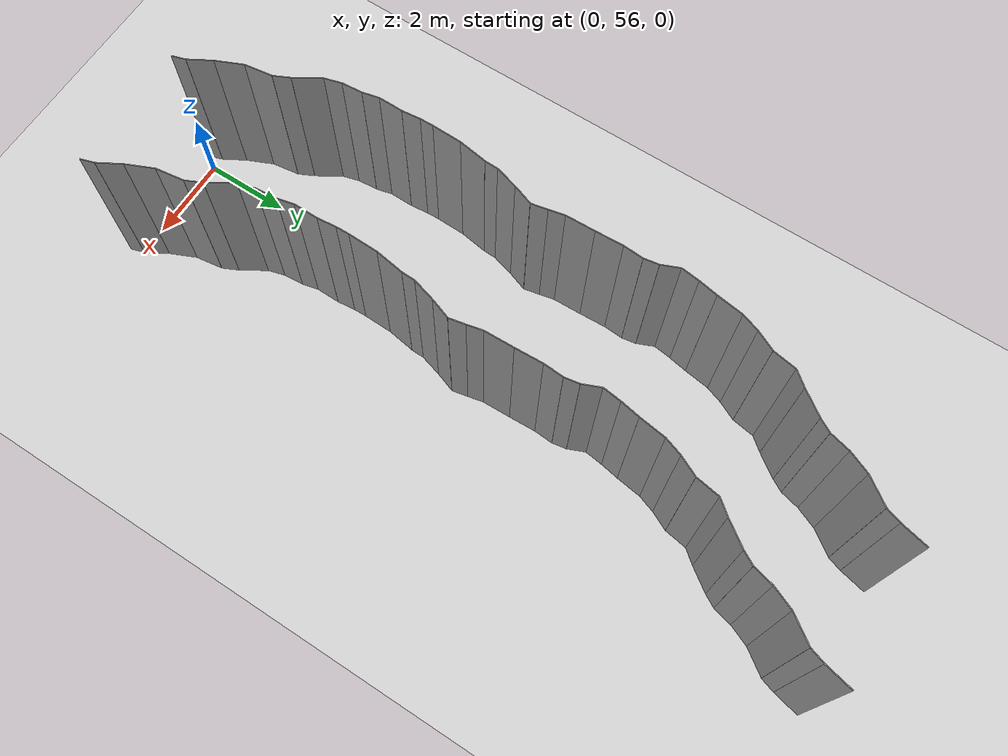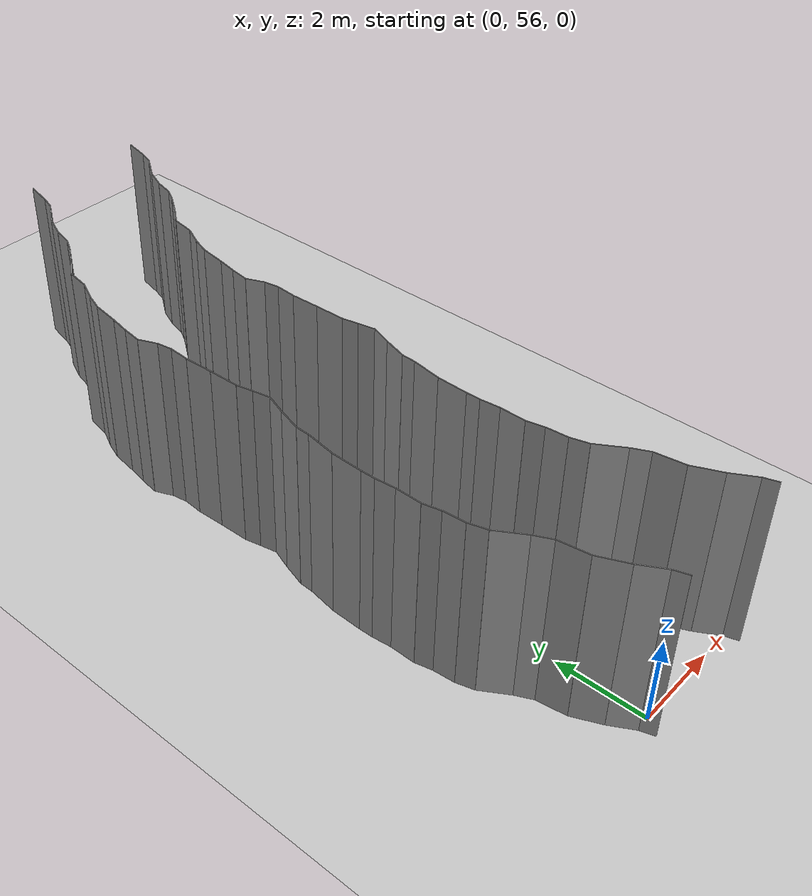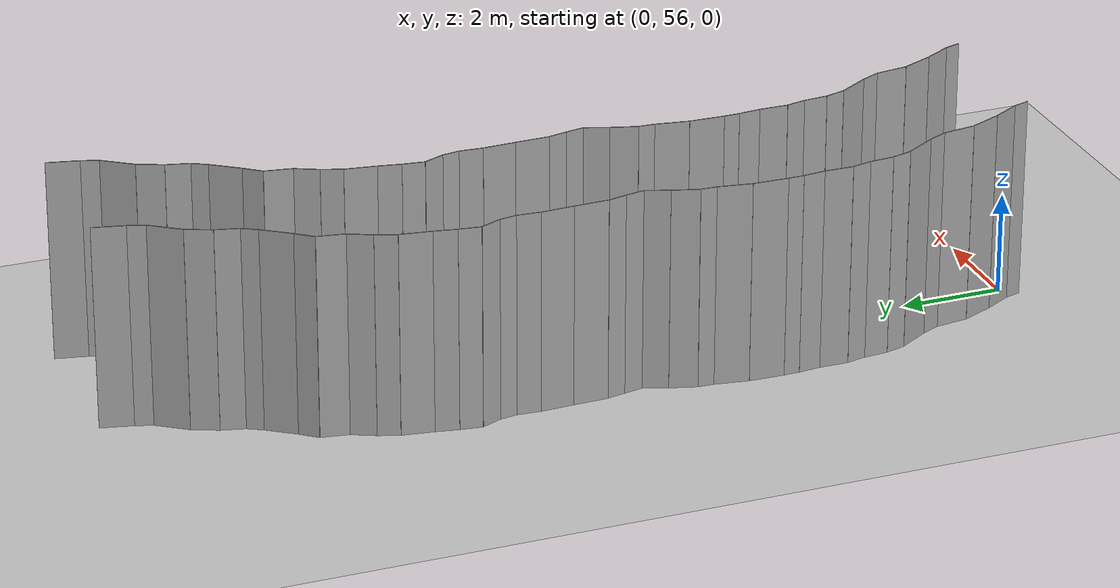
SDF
<sdf version="1.6">
 <world name="default">
  <model name="ground_plane">
   <static>1</static>
   <link name="link">
    <collision name="collision">
     <geometry><plane><normal>0 0 1</normal><size>200 200</size></plane></geometry>
     <surface><friction><ode><mu>100</mu><mu2>50</mu2></ode></friction></surface>
    </collision>
    <visual name="visual">
     <cast_shadows>0</cast_shadows>
     <geometry><plane><normal>0 0 1</normal><size>200 200</size></plane></geometry>
     <material>
      <script><uri>file://media/materials/scripts/gazebo.material</uri><name>Gazebo/Grey</name></script>
     </material>
    </visual>
   </link>
   <pose>0 100 0 0 -0 0</pose>
  </model>
  <model name="wall_224">
   <static>1</static>
   <pose>-0.27791568117037885 55.83840874769559 2 0 0 0.3133656839957118</pose>
   <link name="link">
    <collision name="collision"><geometry><box><size>0.02 0.324950442106 4</size></box></geometry></collision>
    <visual name="visual">
     <material>
      <script><name>Gazebo/Grey</name><uri>file://media/materials/scripts/gazebo.material</uri></script>
     </material>
     <geometry><box><size>0.02 0.324950442106 4</size></box></geometry>
    </visual>
   </link>
  </model>
  <model name="wall_225">
   <static>1</static>
   <pose>2.722084318829621 55.83840874769559 2 0 0 0.3133656839957118</pose>
   <link name="link">
    <collision name="collision"><geometry><box><size>0.02 0.324950442106 4</size></box></geometry></collision>
    <visual name="visual">
     <material>
      <script><name>Gazebo/Grey</name><uri>file://media/materials/scripts/gazebo.material</uri></script>
     </material>
     <geometry><box><size>0.02 0.324950442106 4</size></box></geometry>
    </visual>
   </link>
  </model>
  <model name="wall_226">
   <static>1</static>
   <pose>-0.47660424796695955 56.24952846498485 2 0 0 0.5250021931057013</pose>
   <link name="link">
    <collision name="collision"><geometry><box><size>0.02 0.592973609013 4</size></box></geometry></collision>
    <visual name="visual">
     <material>
      <script><name>Gazebo/Grey</name><uri>file://media/materials/scripts/gazebo.material</uri></script>
     </material>
     <geometry><box><size>0.02 0.592973609013 4</size></box></geometry>
    </visual>
   </link>
  </model>
  <model name="wall_227">
   <static>1</static>
   <pose>2.5233957520330406 56.24952846498485 2 0 0 0.5250021931057013</pose>
   <link name="link">
    <collision name="collision"><geometry><box><size>0.02 0.592973609013 4</size></box></geometry></collision>
    <visual name="visual">
     <material>
      <script><name>Gazebo/Grey</name><uri>file://media/materials/scripts/gazebo.material</uri></script>
     </material>
     <geometry><box><size>0.02 0.592973609013 4</size></box></geometry>
    </visual>
   </link>
  </model>
  <model name="wall_228">
   <static>1</static>
   <pose>-0.7618178983115443 56.8112299590555 2 0 0 0.42093077562016074</pose>
   <link name="link">
    <collision name="collision"><geometry><box><size>0.02 0.668657120424 4</size></box></geometry></collision>
    <visual name="visual">
     <material>
      <script><name>Gazebo/Grey</name><uri>file://media/materials/scripts/gazebo.material</uri></script>
     </material>
     <geometry><box><size>0.02 0.668657120424 4</size></box></geometry>
    </visual>
   </link>
  </model>
  <model name="wall_229">
   <static>1</static>
   <pose>2.2381821016884555 56.8112299590555 2 0 0 0.42093077562016074</pose>
   <link name="link">
    <collision name="collision"><geometry><box><size>0.02 0.668657120424 4</size></box></geometry></collision>
    <visual name="visual">
     <material>
      <script><name>Gazebo/Grey</name><uri>file://media/materials/scripts/gazebo.material</uri></script>
     </material>
     <geometry><box><size>0.02 0.668657120424 4</size></box></geometry>
    </visual>
   </link>
  </model>
  <model name="wall_230">
   <static>1</static>
   <pose>-0.9451990305487259 57.44122407455503 2 0 0 0.14299506863835965</pose>
   <link name="link">
    <collision name="collision"><geometry><box><size>0.02 0.656398305966 4</size></box></geometry></collision>
    <visual name="visual">
     <material>
      <script><name>Gazebo/Grey</name><uri>file://media/materials/scripts/gazebo.material</uri></script>
     </material>
     <geometry><box><size>0.02 0.656398305966 4</size></box></geometry>
    </visual>
   </link>
  </model>
  <model name="wall_231">
   <static>1</static>
   <pose>2.054800969451274 57.44122407455503 2 0 0 0.14299506863835965</pose>
   <link name="link">
    <collision name="collision"><geometry><box><size>0.02 0.656398305966 4</size></box></geometry></collision>
    <visual name="visual">
     <material>
      <script><name>Gazebo/Grey</name><uri>file://media/materials/scripts/gazebo.material</uri></script>
     </material>
     <geometry><box><size>0.02 0.656398305966 4</size></box></geometry>
    </visual>
   </link>
  </model>
  <model name="wall_232">
   <static>1</static>
   <pose>-1.080554790731597 57.94830539814786 2 0 0 0.4524736609657934</pose>
   <link name="link">
    <collision name="collision"><geometry><box><size>0.02 0.405244168064 4</size></box></geometry></collision>
    <visual name="visual">
     <material>
      <script><name>Gazebo/Grey</name><uri>file://media/materials/scripts/gazebo.material</uri></script>
     </material>
     <geometry><box><size>0.02 0.405244168064 4</size></box></geometry>
    </visual>
   </link>
  </model>
  <model name="wall_233">
   <static>1</static>
   <pose>1.919445209268403 57.94830539814786 2 0 0 0.4524736609657934</pose>
   <link name="link">
    <collision name="collision"><geometry><box><size>0.02 0.405244168064 4</size></box></geometry></collision>
    <visual name="visual">
     <material>
      <script><name>Gazebo/Grey</name><uri>file://media/materials/scripts/gazebo.material</uri></script>
     </material>
     <geometry><box><size>0.02 0.405244168064 4</size></box></geometry>
    </visual>
   </link>
  </model>
  <model name="wall_234">
   <static>1</static>
   <pose>-1.3510994178721294 58.4220938139118 2 0 0 0.5579507042224446</pose>
   <link name="link">
    <collision name="collision"><geometry><box><size>0.02 0.68735617528 4</size></box></geometry></collision>
    <visual name="visual">
     <material>
      <script><name>Gazebo/Grey</name><uri>file://media/materials/scripts/gazebo.material</uri></script>
     </material>
     <geometry><box><size>0.02 0.68735617528 4</size></box></geometry>
    </visual>
   </link>
  </model>
  <model name="wall_235">
   <static>1</static>
   <pose>1.6489005821278706 58.4220938139118 2 0 0 0.5579507042224446</pose>
   <link name="link">
    <collision name="collision"><geometry><box><size>0.02 0.68735617528 4</size></box></geometry></collision>
    <visual name="visual">
     <material>
      <script><name>Gazebo/Grey</name><uri>file://media/materials/scripts/gazebo.material</uri></script>
     </material>
     <geometry><box><size>0.02 0.68735617528 4</size></box></geometry>
    </visual>
   </link>
  </model>
  <model name="wall_236">
   <static>1</static>
   <pose>-1.5883066898242262 58.90938555700344 2 0 0 0.2750988796743809</pose>
   <link name="link">
    <collision name="collision"><geometry><box><size>0.02 0.406765507474 4</size></box></geometry></collision>
    <visual name="visual">
     <material>
      <script><name>Gazebo/Grey</name><uri>file://media/materials/scripts/gazebo.material</uri></script>
     </material>
     <geometry><box><size>0.02 0.406765507474 4</size></box></geometry>
    </visual>
   </link>
  </model>
  <model name="wall_237">
   <static>1</static>
   <pose>1.4116933101757738 58.90938555700344 2 0 0 0.2750988796743809</pose>
   <link name="link">
    <collision name="collision"><geometry><box><size>0.02 0.406765507474 4</size></box></geometry></collision>
    <visual name="visual">
     <material>
      <script><name>Gazebo/Grey</name><uri>file://media/materials/scripts/gazebo.material</uri></script>
     </material>
     <geometry><box><size>0.02 0.406765507474 4</size></box></geometry>
    </visual>
   </link>
  </model>
  <model name="wall_238">
   <static>1</static>
   <pose>-1.6635848454764437 59.3444395869822 2 0 0 0.08350475031834377</pose>
   <link name="link">
    <collision name="collision"><geometry><box><size>0.02 0.480311252514 4</size></box></geometry></collision>
    <visual name="visual">
     <material>
      <script><name>Gazebo/Grey</name><uri>file://media/materials/scripts/gazebo.material</uri></script>
     </material>
     <geometry><box><size>0.02 0.480311252514 4</size></box></geometry>
    </visual>
   </link>
  </model>
  <model name="wall_239">
   <static>1</static>
   <pose>1.3364151545235563 59.3444395869822 2 0 0 0.08350475031834377</pose>
   <link name="link">
    <collision name="collision"><geometry><box><size>0.02 0.480311252514 4</size></box></geometry></collision>
    <visual name="visual">
     <material>
      <script><name>Gazebo/Grey</name><uri>file://media/materials/scripts/gazebo.material</uri></script>
     </material>
     <geometry><box><size>0.02 0.480311252514 4</size></box></geometry>
    </visual>
   </link>
  </model>
  <model name="wall_240">
   <static>1</static>
   <pose>-1.7284278739360932 59.77567407636406 2 0 0 0.2293893896538584</pose>
   <link name="link">
    <collision name="collision"><geometry><box><size>0.02 0.394156123501 4</size></box></geometry></collision>
    <visual name="visual">
     <material>
      <script><name>Gazebo/Grey</name><uri>file://media/materials/scripts/gazebo.material</uri></script>
     </material>
     <geometry><box><size>0.02 0.394156123501 4</size></box></geometry>
    </visual>
   </link>
  </model>
  <model name="wall_241">
   <static>1</static>
   <pose>1.2715721260639068 59.77567407636406 2 0 0 0.2293893896538584</pose>
   <link name="link">
    <collision name="collision"><geometry><box><size>0.02 0.394156123501 4</size></box></geometry></collision>
    <visual name="visual">
     <material>
      <script><name>Gazebo/Grey</name><uri>file://media/materials/scripts/gazebo.material</uri></script>
     </material>
     <geometry><box><size>0.02 0.394156123501 4</size></box></geometry>
    </visual>
   </link>
  </model>
  <model name="wall_242">
   <static>1</static>
   <pose>-1.7704749467248142 60.251694054802265 2 0 0 -0.009732450669603133</pose>
   <link name="link">
    <collision name="collision"><geometry><box><size>0.02 0.568235499501 4</size></box></geometry></collision>
    <visual name="visual">
     <material>
      <script><name>Gazebo/Grey</name><uri>file://media/materials/scripts/gazebo.material</uri></script>
     </material>
     <geometry><box><size>0.02 0.568235499501 4</size></box></geometry>
    </visual>
   </link>
  </model>
  <model name="wall_243">
   <static>1</static>
   <pose>1.2295250532751858 60.251694054802265 2 0 0 -0.009732450669603133</pose>
   <link name="link">
    <collision name="collision"><geometry><box><size>0.02 0.568235499501 4</size></box></geometry></collision>
    <visual name="visual">
     <material>
      <script><name>Gazebo/Grey</name><uri>file://media/materials/scripts/gazebo.material</uri></script>
     </material>
     <geometry><box><size>0.02 0.568235499501 4</size></box></geometry>
    </visual>
   </link>
  </model>
  <model name="wall_244">
   <static>1</static>
   <pose>-1.7906715997844158 60.75374444508633 2 0 0 0.10496804762261613</pose>
   <link name="link">
    <collision name="collision"><geometry><box><size>0.02 0.438304660483 4</size></box></geometry></collision>
    <visual name="visual">
     <material>
      <script><name>Gazebo/Grey</name><uri>file://media/materials/scripts/gazebo.material</uri></script>
     </material>
     <geometry><box><size>0.02 0.438304660483 4</size></box></geometry>
    </visual>
   </link>
  </model>
  <model name="wall_245">
   <static>1</static>
   <pose>1.2093284002155842 60.75374444508633 2 0 0 0.10496804762261613</pose>
   <link name="link">
    <collision name="collision"><geometry><box><size>0.02 0.438304660483 4</size></box></geometry></collision>
    <visual name="visual">
     <material>
      <script><name>Gazebo/Grey</name><uri>file://media/materials/scripts/gazebo.material</uri></script>
     </material>
     <geometry><box><size>0.02 0.438304660483 4</size></box></geometry>
    </visual>
   </link>
  </model>
  <model name="wall_246">
   <static>1</static>
   <pose>-1.8173832162595678 61.12556942628372 2 0 0 0.02436398654814135</pose>
   <link name="link">
    <collision name="collision"><geometry><box><size>0.02 0.307849135433 4</size></box></geometry></collision>
    <visual name="visual">
     <material>
      <script><name>Gazebo/Grey</name><uri>file://media/materials/scripts/gazebo.material</uri></script>
     </material>
     <geometry><box><size>0.02 0.307849135433 4</size></box></geometry>
    </visual>
   </link>
  </model>
  <model name="wall_247">
   <static>1</static>
   <pose>1.1826167837404322 61.12556942628372 2 0 0 0.02436398654814135</pose>
   <link name="link">
    <collision name="collision"><geometry><box><size>0.02 0.307849135433 4</size></box></geometry></collision>
    <visual name="visual">
     <material>
      <script><name>Gazebo/Grey</name><uri>file://media/materials/scripts/gazebo.material</uri></script>
     </material>
     <geometry><box><size>0.02 0.307849135433 4</size></box></geometry>
    </visual>
   </link>
  </model>
  <model name="wall_248">
   <static>1</static>
   <pose>-1.8132009976499885 61.62638501082812 2 0 0 -0.022859161464248358</pose>
   <link name="link">
    <collision name="collision"><geometry><box><size>0.02 0.694054727572 4</size></box></geometry></collision>
    <visual name="visual">
     <material>
      <script><name>Gazebo/Grey</name><uri>file://media/materials/scripts/gazebo.material</uri></script>
     </material>
     <geometry><box><size>0.02 0.694054727572 4</size></box></geometry>
    </visual>
   </link>
  </model>
  <model name="wall_249">
   <static>1</static>
   <pose>1.1867990023500115 61.62638501082812 2 0 0 -0.022859161464248358</pose>
   <link name="link">
    <collision name="collision"><geometry><box><size>0.02 0.694054727572 4</size></box></geometry></collision>
    <visual name="visual">
     <material>
      <script><name>Gazebo/Grey</name><uri>file://media/materials/scripts/gazebo.material</uri></script>
     </material>
     <geometry><box><size>0.02 0.694054727572 4</size></box></geometry>
    </visual>
   </link>
  </model>
  <model name="wall_250">
   <static>1</static>
   <pose>-1.7539240802716278 62.30548342707613 2 0 0 -0.15336405647933593</pose>
   <link name="link">
    <collision name="collision"><geometry><box><size>0.02 0.672213358856 4</size></box></geometry></collision>
    <visual name="visual">
     <material>
      <script><name>Gazebo/Grey</name><uri>file://media/materials/scripts/gazebo.material</uri></script>
     </material>
     <geometry><box><size>0.02 0.672213358856 4</size></box></geometry>
    </visual>
   </link>
  </model>
  <model name="wall_251">
   <static>1</static>
   <pose>1.2460759197283722 62.30548342707613 2 0 0 -0.15336405647933593</pose>
   <link name="link">
    <collision name="collision"><geometry><box><size>0.02 0.672213358856 4</size></box></geometry></collision>
    <visual name="visual">
     <material>
      <script><name>Gazebo/Grey</name><uri>file://media/materials/scripts/gazebo.material</uri></script>
     </material>
     <geometry><box><size>0.02 0.672213358856 4</size></box></geometry>
    </visual>
   </link>
  </model>
  <model name="wall_252">
   <static>1</static>
   <pose>-1.6974033172751517 62.79488535269035 2 0 0 -0.03290533075677148</pose>
   <link name="link">
    <collision name="collision"><geometry><box><size>0.02 0.31465074846 4</size></box></geometry></collision>
    <visual name="visual">
     <material>
      <script><name>Gazebo/Grey</name><uri>file://media/materials/scripts/gazebo.material</uri></script>
     </material>
     <geometry><box><size>0.02 0.31465074846 4</size></box></geometry>
    </visual>
   </link>
  </model>
  <model name="wall_253">
   <static>1</static>
   <pose>1.3025966827248483 62.79488535269035 2 0 0 -0.03290533075677148</pose>
   <link name="link">
    <collision name="collision"><geometry><box><size>0.02 0.31465074846 4</size></box></geometry></collision>
    <visual name="visual">
     <material>
      <script><name>Gazebo/Grey</name><uri>file://media/materials/scripts/gazebo.material</uri></script>
     </material>
     <geometry><box><size>0.02 0.31465074846 4</size></box></geometry>
    </visual>
   </link>
  </model>
  <model name="wall_254">
   <static>1</static>
   <pose>-1.6169089534015326 63.21198727259131 2 0 0 -0.28211031161652866</pose>
   <link name="link">
    <collision name="collision"><geometry><box><size>0.02 0.54111358648 4</size></box></geometry></collision>
    <visual name="visual">
     <material>
      <script><name>Gazebo/Grey</name><uri>file://media/materials/scripts/gazebo.material</uri></script>
     </material>
     <geometry><box><size>0.02 0.54111358648 4</size></box></geometry>
    </visual>
   </link>
  </model>
  <model name="wall_255">
   <static>1</static>
   <pose>1.3830910465984674 63.21198727259131 2 0 0 -0.28211031161652866</pose>
   <link name="link">
    <collision name="collision"><geometry><box><size>0.02 0.54111358648 4</size></box></geometry></collision>
    <visual name="visual">
     <material>
      <script><name>Gazebo/Grey</name><uri>file://media/materials/scripts/gazebo.material</uri></script>
     </material>
     <geometry><box><size>0.02 0.54111358648 4</size></box></geometry>
    </visual>
   </link>
  </model>
  <model name="wall_256">
   <static>1</static>
   <pose>-1.4593721740609498 63.70414098582582 2 0 0 -0.34018393857218554</pose>
   <link name="link">
    <collision name="collision"><geometry><box><size>0.02 0.492826246448 4</size></box></geometry></collision>
    <visual name="visual">
     <material>
      <script><name>Gazebo/Grey</name><uri>file://media/materials/scripts/gazebo.material</uri></script>
     </material>
     <geometry><box><size>0.02 0.492826246448 4</size></box></geometry>
    </visual>
   </link>
  </model>
  <model name="wall_257">
   <static>1</static>
   <pose>1.5406278259390502 63.70414098582582 2 0 0 -0.34018393857218554</pose>
   <link name="link">
    <collision name="collision"><geometry><box><size>0.02 0.492826246448 4</size></box></geometry></collision>
    <visual name="visual">
     <material>
      <script><name>Gazebo/Grey</name><uri>file://media/materials/scripts/gazebo.material</uri></script>
     </material>
     <geometry><box><size>0.02 0.492826246448 4</size></box></geometry>
    </visual>
   </link>
  </model>
  <model name="wall_258">
   <static>1</static>
   <pose>-1.4152343770223477 64.1241889956058 2 0 0 0.2001048767347177</pose>
   <link name="link">
    <collision name="collision"><geometry><box><size>0.02 0.383157643325 4</size></box></geometry></collision>
    <visual name="visual">
     <material>
      <script><name>Gazebo/Grey</name><uri>file://media/materials/scripts/gazebo.material</uri></script>
     </material>
     <geometry><box><size>0.02 0.383157643325 4</size></box></geometry>
    </visual>
   </link>
  </model>
  <model name="wall_259">
   <static>1</static>
   <pose>1.5847656229776523 64.1241889956058 2 0 0 0.2001048767347177</pose>
   <link name="link">
    <collision name="collision"><geometry><box><size>0.02 0.383157643325 4</size></box></geometry></collision>
    <visual name="visual">
     <material>
      <script><name>Gazebo/Grey</name><uri>file://media/materials/scripts/gazebo.material</uri></script>
     </material>
     <geometry><box><size>0.02 0.383157643325 4</size></box></geometry>
    </visual>
   </link>
  </model>
  <model name="wall_260">
   <static>1</static>
   <pose>-1.4932901490304638 64.4919732712392 2 0 0 0.2185046491786931</pose>
   <link name="link">
    <collision name="collision"><geometry><box><size>0.02 0.368826232883 4</size></box></geometry></collision>
    <visual name="visual">
     <material>
      <script><name>Gazebo/Grey</name><uri>file://media/materials/scripts/gazebo.material</uri></script>
     </material>
     <geometry><box><size>0.02 0.368826232883 4</size></box></geometry>
    </visual>
   </link>
  </model>
  <model name="wall_261">
   <static>1</static>
   <pose>1.5067098509695362 64.4919732712392 2 0 0 0.2185046491786931</pose>
   <link name="link">
    <collision name="collision"><geometry><box><size>0.02 0.368826232883 4</size></box></geometry></collision>
    <visual name="visual">
     <material>
      <script><name>Gazebo/Grey</name><uri>file://media/materials/scripts/gazebo.material</uri></script>
     </material>
     <geometry><box><size>0.02 0.368826232883 4</size></box></geometry>
    </visual>
   </link>
  </model>
  <model name="wall_262">
   <static>1</static>
   <pose>-1.5431146338694948 65.01232964398662 2 0 0 0.028932351115003044</pose>
   <link name="link">
    <collision name="collision"><geometry><box><size>0.02 0.680941190604 4</size></box></geometry></collision>
    <visual name="visual">
     <material>
      <script><name>Gazebo/Grey</name><uri>file://media/materials/scripts/gazebo.material</uri></script>
     </material>
     <geometry><box><size>0.02 0.680941190604 4</size></box></geometry>
    </visual>
   </link>
  </model>
  <model name="wall_263">
   <static>1</static>
   <pose>1.4568853661305052 65.01232964398662 2 0 0 0.028932351115003044</pose>
   <link name="link">
    <collision name="collision"><geometry><box><size>0.02 0.680941190604 4</size></box></geometry></collision>
    <visual name="visual">
     <material>
      <script><name>Gazebo/Grey</name><uri>file://media/materials/scripts/gazebo.material</uri></script>
     </material>
     <geometry><box><size>0.02 0.680941190604 4</size></box></geometry>
    </visual>
   </link>
  </model>
  <model name="wall_264">
   <static>1</static>
   <pose>-1.5670007736155647 65.67489694401493 2 0 0 0.04353297502971094</pose>
   <link name="link">
    <collision name="collision"><geometry><box><size>0.02 0.645089555523 4</size></box></geometry></collision>
    <visual name="visual">
     <material>
      <script><name>Gazebo/Grey</name><uri>file://media/materials/scripts/gazebo.material</uri></script>
     </material>
     <geometry><box><size>0.02 0.645089555523 4</size></box></geometry>
    </visual>
   </link>
  </model>
  <model name="wall_265">
   <static>1</static>
   <pose>1.4329992263844353 65.67489694401493 2 0 0 0.04353297502971094</pose>
   <link name="link">
    <collision name="collision"><geometry><box><size>0.02 0.645089555523 4</size></box></geometry></collision>
    <visual name="visual">
     <material>
      <script><name>Gazebo/Grey</name><uri>file://media/materials/scripts/gazebo.material</uri></script>
     </material>
     <geometry><box><size>0.02 0.645089555523 4</size></box></geometry>
    </visual>
   </link>
  </model>
  <model name="wall_266">
   <static>1</static>
   <pose>-1.5662017023819084 66.2291083900022 2 0 0 -0.06386881104237221</pose>
   <link name="link">
    <collision name="collision"><geometry><box><size>0.02 0.464892378985 4</size></box></geometry></collision>
    <visual name="visual">
     <material>
      <script><name>Gazebo/Grey</name><uri>file://media/materials/scripts/gazebo.material</uri></script>
     </material>
     <geometry><box><size>0.02 0.464892378985 4</size></box></geometry>
    </visual>
   </link>
  </model>
  <model name="wall_267">
   <static>1</static>
   <pose>1.4337982976180916 66.2291083900022 2 0 0 -0.06386881104237221</pose>
   <link name="link">
    <collision name="collision"><geometry><box><size>0.02 0.464892378985 4</size></box></geometry></collision>
    <visual name="visual">
     <material>
      <script><name>Gazebo/Grey</name><uri>file://media/materials/scripts/gazebo.material</uri></script>
     </material>
     <geometry><box><size>0.02 0.464892378985 4</size></box></geometry>
    </visual>
   </link>
  </model>
  <model name="wall_268">
   <static>1</static>
   <pose>-1.580628389826182 66.6309014085038 2 0 0 0.17063922423368055</pose>
   <link name="link">
    <collision name="collision"><geometry><box><size>0.02 0.344647044942 4</size></box></geometry></collision>
    <visual name="visual">
     <material>
      <script><name>Gazebo/Grey</name><uri>file://media/materials/scripts/gazebo.material</uri></script>
     </material>
     <geometry><box><size>0.02 0.344647044942 4</size></box></geometry>
    </visual>
   </link>
  </model>
  <model name="wall_269">
   <static>1</static>
   <pose>1.419371610173818 66.6309014085038 2 0 0 0.17063922423368055</pose>
   <link name="link">
    <collision name="collision"><geometry><box><size>0.02 0.344647044942 4</size></box></geometry></collision>
    <visual name="visual">
     <material>
      <script><name>Gazebo/Grey</name><uri>file://media/materials/scripts/gazebo.material</uri></script>
     </material>
     <geometry><box><size>0.02 0.344647044942 4</size></box></geometry>
    </visual>
   </link>
  </model>
  <model name="wall_270">
   <static>1</static>
   <pose>-1.6957473728369756 67.00085739900572 2 0 0 0.40524668718133283</pose>
   <link name="link">
    <collision name="collision"><geometry><box><size>0.02 0.435547544344 4</size></box></geometry></collision>
    <visual name="visual">
     <material>
      <script><name>Gazebo/Grey</name><uri>file://media/materials/scripts/gazebo.material</uri></script>
     </material>
     <geometry><box><size>0.02 0.435547544344 4</size></box></geometry>
    </visual>
   </link>
  </model>
  <model name="wall_271">
   <static>1</static>
   <pose>1.3042526271630244 67.00085739900572 2 0 0 0.40524668718133283</pose>
   <link name="link">
    <collision name="collision"><geometry><box><size>0.02 0.435547544344 4</size></box></geometry></collision>
    <visual name="visual">
     <material>
      <script><name>Gazebo/Grey</name><uri>file://media/materials/scripts/gazebo.material</uri></script>
     </material>
     <geometry><box><size>0.02 0.435547544344 4</size></box></geometry>
    </visual>
   </link>
  </model>
  <model name="wall_272">
   <static>1</static>
   <pose>-1.754039744934758 67.416248052006 2 0 0 -0.12735919889404482</pose>
   <link name="link">
    <collision name="collision"><geometry><box><size>0.02 0.434026136898 4</size></box></geometry></collision>
    <visual name="visual">
     <material>
      <script><name>Gazebo/Grey</name><uri>file://media/materials/scripts/gazebo.material</uri></script>
     </material>
     <geometry><box><size>0.02 0.434026136898 4</size></box></geometry>
    </visual>
   </link>
  </model>
  <model name="wall_273">
   <static>1</static>
   <pose>1.245960255065242 67.416248052006 2 0 0 -0.12735919889404482</pose>
   <link name="link">
    <collision name="collision"><geometry><box><size>0.02 0.434026136898 4</size></box></geometry></collision>
    <visual name="visual">
     <material>
      <script><name>Gazebo/Grey</name><uri>file://media/materials/scripts/gazebo.material</uri></script>
     </material>
     <geometry><box><size>0.02 0.434026136898 4</size></box></geometry>
    </visual>
   </link>
  </model>
  <model name="wall_274">
   <static>1</static>
   <pose>-1.685952158855939 67.85520381665513 2 0 0 -0.17920799798602463</pose>
   <link name="link">
    <collision name="collision"><geometry><box><size>0.02 0.45468232568 4</size></box></geometry></collision>
    <visual name="visual">
     <material>
      <script><name>Gazebo/Grey</name><uri>file://media/materials/scripts/gazebo.material</uri></script>
     </material>
     <geometry><box><size>0.02 0.45468232568 4</size></box></geometry>
    </visual>
   </link>
  </model>
  <model name="wall_275">
   <static>1</static>
   <pose>1.314047841144061 67.85520381665513 2 0 0 -0.17920799798602463</pose>
   <link name="link">
    <collision name="collision"><geometry><box><size>0.02 0.45468232568 4</size></box></geometry></collision>
    <visual name="visual">
     <material>
      <script><name>Gazebo/Grey</name><uri>file://media/materials/scripts/gazebo.material</uri></script>
     </material>
     <geometry><box><size>0.02 0.45468232568 4</size></box></geometry>
    </visual>
   </link>
  </model>
  <model name="wall_276">
   <static>1</static>
   <pose>-1.6020151354685144 68.38843655791726 2 0 0 -0.13934578558750305</pose>
   <link name="link">
    <collision name="collision"><geometry><box><size>0.02 0.625124094977 4</size></box></geometry></collision>
    <visual name="visual">
     <material>
      <script><name>Gazebo/Grey</name><uri>file://media/materials/scripts/gazebo.material</uri></script>
     </material>
     <geometry><box><size>0.02 0.625124094977 4</size></box></geometry>
    </visual>
   </link>
  </model>
  <model name="wall_277">
   <static>1</static>
   <pose>1.3979848645314856 68.38843655791726 2 0 0 -0.13934578558750305</pose>
   <link name="link">
    <collision name="collision"><geometry><box><size>0.02 0.625124094977 4</size></box></geometry></collision>
    <visual name="visual">
     <material>
      <script><name>Gazebo/Grey</name><uri>file://media/materials/scripts/gazebo.material</uri></script>
     </material>
     <geometry><box><size>0.02 0.625124094977 4</size></box></geometry>
    </visual>
   </link>
  </model>
  <model name="wall_278">
   <static>1</static>
   <pose>-1.4871559469916862 68.90145631933474 2 0 0 -0.3376605111054077</pose>
   <link name="link">
    <collision name="collision"><geometry><box><size>0.02 0.431330988546 4</size></box></geometry></collision>
    <visual name="visual">
     <material>
      <script><name>Gazebo/Grey</name><uri>file://media/materials/scripts/gazebo.material</uri></script>
     </material>
     <geometry><box><size>0.02 0.431330988546 4</size></box></geometry>
    </visual>
   </link>
  </model>
  <model name="wall_279">
   <static>1</static>
   <pose>1.5128440530083138 68.90145631933474 2 0 0 -0.3376605111054077</pose>
   <link name="link">
    <collision name="collision"><geometry><box><size>0.02 0.431330988546 4</size></box></geometry></collision>
    <visual name="visual">
     <material>
      <script><name>Gazebo/Grey</name><uri>file://media/materials/scripts/gazebo.material</uri></script>
     </material>
     <geometry><box><size>0.02 0.431330988546 4</size></box></geometry>
    </visual>
   </link>
  </model>
  <model name="wall_280">
   <static>1</static>
   <pose>-1.309183934287535 69.32508373846905 2 0 0 -0.45068645951637143</pose>
   <link name="link">
    <collision name="collision"><geometry><box><size>0.02 0.489119545916 4</size></box></geometry></collision>
    <visual name="visual">
     <material>
      <script><name>Gazebo/Grey</name><uri>file://media/materials/scripts/gazebo.material</uri></script>
     </material>
     <geometry><box><size>0.02 0.489119545916 4</size></box></geometry>
    </visual>
   </link>
  </model>
  <model name="wall_281">
   <static>1</static>
   <pose>1.690816065712465 69.32508373846905 2 0 0 -0.45068645951637143</pose>
   <link name="link">
    <collision name="collision"><geometry><box><size>0.02 0.489119545916 4</size></box></geometry></collision>
    <visual name="visual">
     <material>
      <script><name>Gazebo/Grey</name><uri>file://media/materials/scripts/gazebo.material</uri></script>
     </material>
     <geometry><box><size>0.02 0.489119545916 4</size></box></geometry>
    </visual>
   </link>
  </model>
  <model name="wall_282">
   <static>1</static>
   <pose>-1.1584945867136665 69.81857496498095 2 0 0 -0.16017780319368471</pose>
   <link name="link">
    <collision name="collision"><geometry><box><size>0.02 0.553791440509 4</size></box></geometry></collision>
    <visual name="visual">
     <material>
      <script><name>Gazebo/Grey</name><uri>file://media/materials/scripts/gazebo.material</uri></script>
     </material>
     <geometry><box><size>0.02 0.553791440509 4</size></box></geometry>
    </visual>
   </link>
  </model>
  <model name="wall_283">
   <static>1</static>
   <pose>1.8415054132863335 69.81857496498095 2 0 0 -0.16017780319368471</pose>
   <link name="link">
    <collision name="collision"><geometry><box><size>0.02 0.553791440509 4</size></box></geometry></collision>
    <visual name="visual">
     <material>
      <script><name>Gazebo/Grey</name><uri>file://media/materials/scripts/gazebo.material</uri></script>
     </material>
     <geometry><box><size>0.02 0.553791440509 4</size></box></geometry>
    </visual>
   </link>
  </model>
  <model name="wall_284">
   <static>1</static>
   <pose>-0.9847908754586373 70.25148613914111 2 0 0 -0.6819316328285581</pose>
   <link name="link">
    <collision name="collision"><geometry><box><size>0.02 0.411048216196 4</size></box></geometry></collision>
    <visual name="visual">
     <material>
      <script><name>Gazebo/Grey</name><uri>file://media/materials/scripts/gazebo.material</uri></script>
     </material>
     <geometry><box><size>0.02 0.411048216196 4</size></box></geometry>
    </visual>
   </link>
  </model>
  <model name="wall_285">
   <static>1</static>
   <pose>2.0152091245413626 70.25148613914111 2 0 0 -0.6819316328285581</pose>
   <link name="link">
    <collision name="collision"><geometry><box><size>0.02 0.411048216196 4</size></box></geometry></collision>
    <visual name="visual">
     <material>
      <script><name>Gazebo/Grey</name><uri>file://media/materials/scripts/gazebo.material</uri></script>
     </material>
     <geometry><box><size>0.02 0.411048216196 4</size></box></geometry>
    </visual>
   </link>
  </model>
  <model name="wall_286">
   <static>1</static>
   <pose>-0.6665978799161976 70.67427328320106 2 0 0 -0.6218401158177833</pose>
   <link name="link">
    <collision name="collision"><geometry><box><size>0.02 0.647698254835 4</size></box></geometry></collision>
    <visual name="visual">
     <material>
      <script><name>Gazebo/Grey</name><uri>file://media/materials/scripts/gazebo.material</uri></script>
     </material>
     <geometry><box><size>0.02 0.647698254835 4</size></box></geometry>
    </visual>
   </link>
  </model>
  <model name="wall_287">
   <static>1</static>
   <pose>2.3334021200838024 70.67427328320106 2 0 0 -0.6218401158177833</pose>
   <link name="link">
    <collision name="collision"><geometry><box><size>0.02 0.647698254835 4</size></box></geometry></collision>
    <visual name="visual">
     <material>
      <script><name>Gazebo/Grey</name><uri>file://media/materials/scripts/gazebo.material</uri></script>
     </material>
     <geometry><box><size>0.02 0.647698254835 4</size></box></geometry>
    </visual>
   </link>
  </model>
  <model name="wall_288">
   <static>1</static>
   <pose>-0.3961471649305271 71.08209212376896 2 0 0 -0.514831498811147</pose>
   <link name="link">
    <collision name="collision"><geometry><box><size>0.02 0.332251253264 4</size></box></geometry></collision>
    <visual name="visual">
     <material>
      <script><name>Gazebo/Grey</name><uri>file://media/materials/scripts/gazebo.material</uri></script>
     </material>
     <geometry><box><size>0.02 0.332251253264 4</size></box></geometry>
    </visual>
   </link>
  </model>
  <model name="wall_289">
   <static>1</static>
   <pose>2.603852835069473 71.08209212376896 2 0 0 -0.514831498811147</pose>
   <link name="link">
    <collision name="collision"><geometry><box><size>0.02 0.332251253264 4</size></box></geometry></collision>
    <visual name="visual">
     <material>
      <script><name>Gazebo/Grey</name><uri>file://media/materials/scripts/gazebo.material</uri></script>
     </material>
     <geometry><box><size>0.02 0.332251253264 4</size></box></geometry>
    </visual>
   </link>
  </model>
  <model name="wall_290">
   <static>1</static>
   <pose>-0.25832148165200003 71.45758173510033 2 0 0 -0.2380491818961502</pose>
   <link name="link">
    <collision name="collision"><geometry><box><size>0.02 0.475196419303 4</size></box></geometry></collision>
    <visual name="visual">
     <material>
      <script><name>Gazebo/Grey</name><uri>file://media/materials/scripts/gazebo.material</uri></script>
     </material>
     <geometry><box><size>0.02 0.475196419303 4</size></box></geometry>
    </visual>
   </link>
  </model>
  <model name="wall_291">
   <static>1</static>
   <pose>2.741678518348 71.45758173510033 2 0 0 -0.2380491818961502</pose>
   <link name="link">
    <collision name="collision"><geometry><box><size>0.02 0.475196419303 4</size></box></geometry></collision>
    <visual name="visual">
     <material>
      <script><name>Gazebo/Grey</name><uri>file://media/materials/scripts/gazebo.material</uri></script>
     </material>
     <geometry><box><size>0.02 0.475196419303 4</size></box></geometry>
    </visual>
   </link>
  </model>
  <model name="wall_292">
   <static>1</static>
   <pose>-0.09705305331206043 71.93509845574638 2 0 0 -0.4033398431829642</pose>
   <link name="link">
    <collision name="collision"><geometry><box><size>0.02 0.536270523661 4</size></box></geometry></collision>
    <visual name="visual">
     <material>
      <script><name>Gazebo/Grey</name><uri>file://media/materials/scripts/gazebo.material</uri></script>
     </material>
     <geometry><box><size>0.02 0.536270523661 4</size></box></geometry>
    </visual>
   </link>
  </model>
  <model name="wall_293">
   <static>1</static>
   <pose>2.9029469466879396 71.93509845574638 2 0 0 -0.4033398431829642</pose>
   <link name="link">
    <collision name="collision"><geometry><box><size>0.02 0.536270523661 4</size></box></geometry></collision>
    <visual name="visual">
     <material>
      <script><name>Gazebo/Grey</name><uri>file://media/materials/scripts/gazebo.material</uri></script>
     </material>
     <geometry><box><size>0.02 0.536270523661 4</size></box></geometry>
    </visual>
   </link>
  </model>
  <model name="wall_294">
   <static>1</static>
   <pose>0.21139251824535324 72.46533254860842 2 0 0 -0.6217006180822182</pose>
   <link name="link">
    <collision name="collision"><geometry><box><size>0.02 0.697795684901 4</size></box></geometry></collision>
    <visual name="visual">
     <material>
      <script><name>Gazebo/Grey</name><uri>file://media/materials/scripts/gazebo.material</uri></script>
     </material>
     <geometry><box><size>0.02 0.697795684901 4</size></box></geometry>
    </visual>
   </link>
  </model>
  <model name="wall_295">
   <static>1</static>
   <pose>3.2113925182453533 72.46533254860842 2 0 0 -0.6217006180822182</pose>
   <link name="link">
    <collision name="collision"><geometry><box><size>0.02 0.697795684901 4</size></box></geometry></collision>
    <visual name="visual">
     <material>
      <script><name>Gazebo/Grey</name><uri>file://media/materials/scripts/gazebo.material</uri></script>
     </material>
     <geometry><box><size>0.02 0.697795684901 4</size></box></geometry>
    </visual>
   </link>
  </model>
  <model name="wall_296">
   <static>1</static>
   <pose>0.46919072181955035 72.91613005423622 2 0 0 -0.31563489640144177</pose>
   <link name="link">
    <collision name="collision"><geometry><box><size>0.02 0.351740630123 4</size></box></geometry></collision>
    <visual name="visual">
     <material>
      <script><name>Gazebo/Grey</name><uri>file://media/materials/scripts/gazebo.material</uri></script>
     </material>
     <geometry><box><size>0.02 0.351740630123 4</size></box></geometry>
    </visual>
   </link>
  </model>
  <model name="wall_297">
   <static>1</static>
   <pose>3.46919072181955 72.91613005423622 2 0 0 -0.31563489640144177</pose>
   <link name="link">
    <collision name="collision"><geometry><box><size>0.02 0.351740630123 4</size></box></geometry></collision>
    <visual name="visual">
     <material>
      <script><name>Gazebo/Grey</name><uri>file://media/materials/scripts/gazebo.material</uri></script>
     </material>
     <geometry><box><size>0.02 0.351740630123 4</size></box></geometry>
    </visual>
   </link>
  </model>
  <model name="wall_298">
   <static>1</static>
   <pose>0.5933166717239068 73.39816482657749 2 0 0 -0.2173521110045131</pose>
   <link name="link">
    <collision name="collision"><geometry><box><size>0.02 0.644877848944 4</size></box></geometry></collision>
    <visual name="visual">
     <material>
      <script><name>Gazebo/Grey</name><uri>file://media/materials/scripts/gazebo.material</uri></script>
     </material>
     <geometry><box><size>0.02 0.644877848944 4</size></box></geometry>
    </visual>
   </link>
  </model>
  <model name="wall_299">
   <static>1</static>
   <pose>3.593316671723907 73.39816482657749 2 0 0 -0.2173521110045131</pose>
   <link name="link">
    <collision name="collision"><geometry><box><size>0.02 0.644877848944 4</size></box></geometry></collision>
    <visual name="visual">
     <material>
      <script><name>Gazebo/Grey</name><uri>file://media/materials/scripts/gazebo.material</uri></script>
     </material>
     <geometry><box><size>0.02 0.644877848944 4</size></box></geometry>
    </visual>
   </link>
  </model>
 </world>
</sdf>
